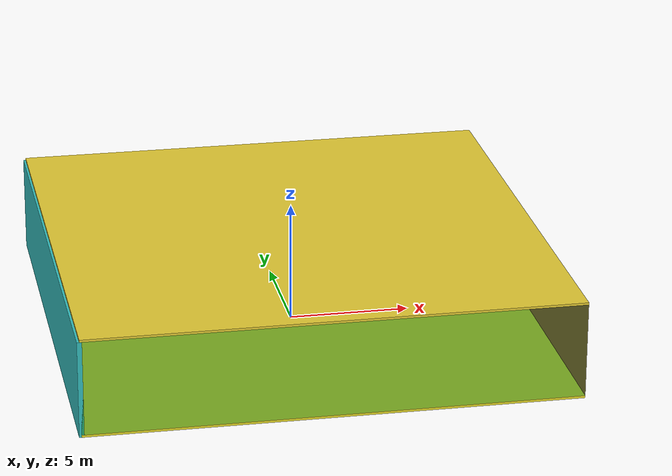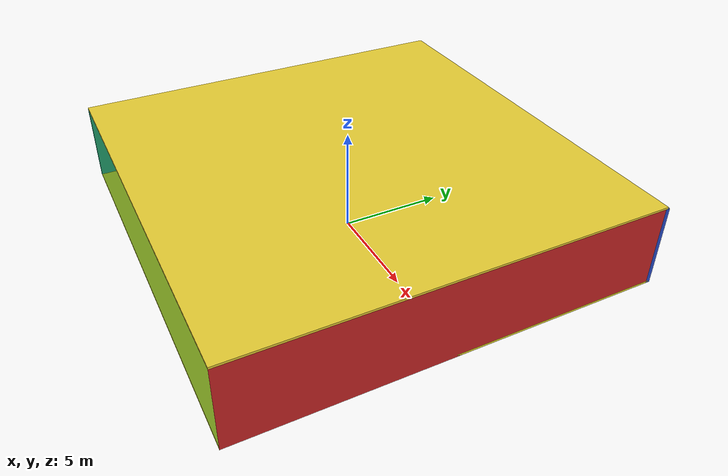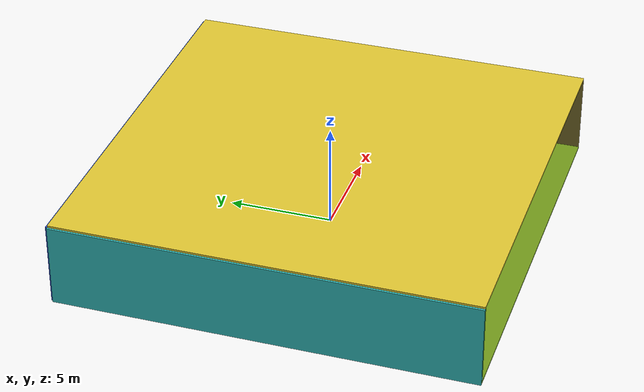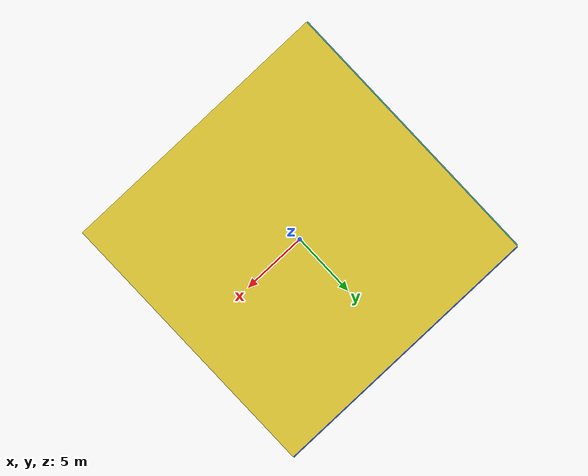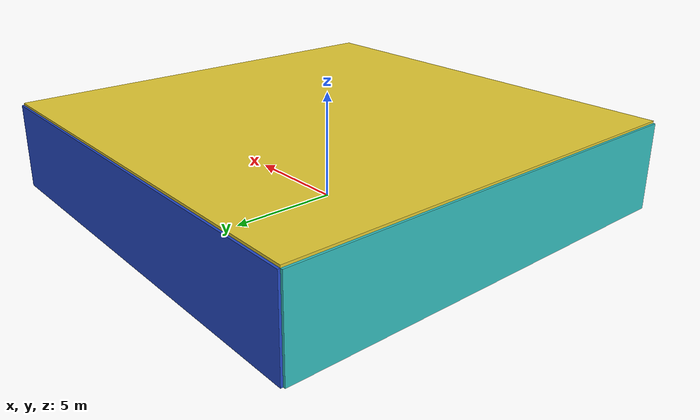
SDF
<sdf version="1.4">
 <world name="default">
  <physics type="ode">
   <max_step_size>0.001</max_step_size>
   <real_time_factor>1</real_time_factor>
   <real_time_update_rate>1000</real_time_update_rate>
   <gravity>0 0 -9.8</gravity>
  </physics>
  <scene><ambient>0.4 0.4 0.4 1</ambient><background>0.7 0.7 0.7 1</background><shadows>1</shadows></scene>
  <model name="Surrounding">
   <static>1</static>
   <link name="Ceiling">
    <collision name="Ceiling_Collision"><geometry><box><size>20 20 0.1</size></box></geometry></collision>
    <visual name="Ceiling_Visual">
     <geometry><box><size>20 20 0.1</size></box></geometry>
     <material>
      <script><uri>file://media/materials/scripts/gazebo.material</uri><name>Gazebo/ZincYellow</name></script>
     </material>
    </visual>
    <pose>0 0 4.05 0 0 0</pose>
   </link>
   <link name="Wall_South">
    <collision name="Wall_South_Collision">
     <geometry><box><size>20 0 4</size></box></geometry>
     <pose>0 0 2 0 -0 0</pose>
    </collision>
    <visual name="Wall_South_Visual">
     <pose>0 0 2 0 -0 0</pose>
     <geometry><box><size>20 0 4</size></box></geometry>
     <material>
      <script><uri>file://media/materials/scripts/gazebo.material</uri><name>Gazebo/GreenTransparent</name></script>
     </material>
    </visual>
    <velocity_decay><linear>0</linear><angular>0</angular></velocity_decay>
    <pose>0 -10 0 0 -0 0</pose>
   </link>
   <link name="Wall_East">
    <collision name="Wall_21_Collision">
     <geometry><box><size>20 0 4</size></box></geometry>
     <pose>0 0 2 0 -0 0</pose>
    </collision>
    <visual name="Wall_21_Visual">
     <pose>0 0 2 0 -0 0</pose>
     <geometry><box><size>20 0 4</size></box></geometry>
     <material>
      <script><uri>file://media/materials/scripts/gazebo.material</uri><name>Gazebo/RedBright</name></script>
     </material>
    </visual>
    <velocity_decay><linear>0</linear><angular>0</angular></velocity_decay>
    <pose>10 0 0 0 -0 1.5708</pose>
   </link>
   <link name="Wall_North">
    <collision name="Wall_22_Collision">
     <geometry><box><size>20 0.2 4</size></box></geometry>
     <pose>0 0 2 0 -0 0</pose>
    </collision>
    <visual name="Wall_22_Visual">
     <pose>0 0 2 0 -0 0</pose>
     <geometry><box><size>20 0.2 4</size></box></geometry>
     <material>
      <script><uri>file://media/materials/scripts/gazebo.material</uri><name>Gazebo/BlueGlow</name></script>
     </material>
    </visual>
    <velocity_decay><linear>0</linear><angular>0</angular></velocity_decay>
    <pose>0 10 0 0 -0 0</pose>
   </link>
   <link name="Wall_West">
    <collision name="Wall_23_Collision">
     <geometry><box><size>20 0.2 4</size></box></geometry>
     <pose>0 0 2 0 -0 0</pose>
    </collision>
    <visual name="Wall_23_Visual">
     <pose>0 0 2 0 -0 0</pose>
     <geometry><box><size>20 0.2 4</size></box></geometry>
     <material>
      <script><uri>file://media/materials/scripts/gazebo.material</uri><name>Gazebo/Turquoise</name></script>
     </material>
    </visual>
    <velocity_decay><linear>0</linear><angular>0</angular></velocity_decay>
    <pose>-10 0 0 0 0 -1.5708</pose>
   </link>
   <link name="Ground_link">
    <collision name="collision">
     <pose>0 0 .05 0 -0 0</pose>
     <geometry><box><size>20 20 0.1</size></box></geometry>
    </collision>
    <visual name="visual">
     <pose>0 0 .05 0 -0 0</pose>
     <geometry><box><size>20 20 0.1</size></box></geometry>
     <material>
      <script><uri>file://media/materials/scripts/gazebo.material</uri><name>Gazebo/Yellow</name></script>
     </material>
    </visual>
   </link>
   <static>1</static>
  </model>
  <spherical_coordinates>
   <surface_model>EARTH_WGS84</surface_model>
   <latitude_deg>0</latitude_deg>
   <longitude_deg>0</longitude_deg>
   <elevation>0</elevation>
   <heading_deg>0</heading_deg>
  </spherical_coordinates>
  <light name="lightball_0" type="diffuse">
   <diffuse>0.8 0.8 0.8 1</diffuse>
   <specular>0.2 0.2 0.2 1</specular>
   <attenuation>
    <range>100</range>
    <constant>0.7</constant>
    <linear>0.01</linear>
    <quadratic>0.001</quadratic>
   </attenuation>
   <direction>-0.5 0.1 -0.9</direction>
   <pose>2.34481835069 3.48166482522 2.41839124001 0 0 0</pose>
  </light>
  <light name="lightball_1" type="diffuse">
   <diffuse>0.8 0.8 0.8 1</diffuse>
   <specular>0.2 0.2 0.2 1</specular>
   <attenuation>
    <range>100</range>
    <constant>0.7</constant>
    <linear>0.01</linear>
    <quadratic>0.001</quadratic>
   </attenuation>
   <direction>-0.5 0.1 -0.9</direction>
   <pose>5.02532478825 -8.10325666187 0.990671725253 0 0 0</pose>
  </light>
  <light name="lightball_2" type="diffuse">
   <diffuse>0.8 0.8 0.8 1</diffuse>
   <specular>0.2 0.2 0.2 1</specular>
   <attenuation>
    <range>100</range>
    <constant>0.7</constant>
    <linear>0.01</linear>
    <quadratic>0.001</quadratic>
   </attenuation>
   <direction>-0.5 0.1 -0.9</direction>
   <pose>-2.91622866238 8.18857181345 1.68412291947 0 0 0</pose>
  </light>
  <light name="lightball_3" type="diffuse">
   <diffuse>0.8 0.8 0.8 1</diffuse>
   <specular>0.2 0.2 0.2 1</specular>
   <attenuation>
    <range>100</range>
    <constant>0.7</constant>
    <linear>0.01</linear>
    <quadratic>0.001</quadratic>
   </attenuation>
   <direction>-0.5 0.1 -0.9</direction>
   <pose>7.71988519936 -0.0624552618466 1.3732070484 0 0 0</pose>
  </light>
  <light name="lightball_4" type="diffuse">
   <diffuse>0.8 0.8 0.8 1</diffuse>
   <specular>0.2 0.2 0.2 1</specular>
   <attenuation>
    <range>100</range>
    <constant>0.7</constant>
    <linear>0.01</linear>
    <quadratic>0.001</quadratic>
   </attenuation>
   <direction>-0.5 0.1 -0.9</direction>
   <pose>-2.82169844062 -3.58410624976 2.79167587659 0 0 0</pose>
  </light>
  <light name="lightball_5" type="diffuse">
   <diffuse>0.8 0.8 0.8 1</diffuse>
   <specular>0.2 0.2 0.2 1</specular>
   <attenuation>
    <range>100</range>
    <constant>0.7</constant>
    <linear>0.01</linear>
    <quadratic>0.001</quadratic>
   </attenuation>
   <direction>-0.5 0.1 -0.9</direction>
   <pose>-0.366735940286 7.15622926714 2.08248360126 0 0 0</pose>
  </light>
  <include><uri>model://cabinet</uri><pose>-0.822444311562 4.54661484373 0 0 0 0.321957414371</pose></include>
  <include><uri>model://table</uri><pose>1.40811174783 7.72724594505 0 0 0 2.4938519361</pose></include>
  <include><uri>model://cabinet</uri><pose>3.75174811309 1.33350750248 0 0 0 2.31017593501</pose></include>
  <include><uri>model://cabinet</uri><pose>3.80196525445 5.10652336489 0 0 0 2.17897366496</pose></include>
  <include><uri>model://cabinet</uri><pose>4.0777398587 7.79803620751 0 0 0 2.33880175067</pose></include>
  <include>
   <uri>model://construction_cone</uri>
   <pose>8.17564031976 4.34778445877 0 0 0 2.10523508414</pose>
  </include>
 </world>
</sdf>

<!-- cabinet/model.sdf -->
<sdf version="1.5">
  <model name="cabinet">
    <static>true</static>
    <link name="cabinet_bottom_plate">
      <inertial>
        <pose>0 0 -1 0 0 0</pose>
        <inertia>
          <ixx>2.050000</ixx>
          <ixy>0</ixy>
          <ixz>0</ixz>
          <iyy>2.050000</iyy>
          <iyz>0</iyz>
          <izz>2.050000</izz>
        </inertia>
        <mass>25.000000</mass>
      </inertial>
      <collision name="cabinet_bottom_plate_geom">
        <pose>0 0 0.010000 0 0 0</pose>
        <geometry>
          <box>
            <size>0.450000 0.450000 0.020000</size>
          </box>
        </geometry>
      </collision>
      <visual name="cabinet_bottom_plate_geom_visual">
        <pose>0 0 0.010000 0 0 0</pose>
        <geometry>
          <box>
            <size>0.450000 0.450000 0.020000</size>
          </box>
        </geometry>
        <material>
          <script>
            <uri>model://media/materials/scripts/gazebo.material</uri>
            <name>Gazebo/Wood</name>
          </script>
        </material>
      </visual>
      <collision name="cabinet_bottom_plate_geom_cabinet_back_plate">
        <pose>0.235000 0 0.510000 0 0 0</pose>
        <geometry>
          <box>
            <size>0.020000 0.450000 1.020000</size>
          </box>
        </geometry>
      </collision>
      <visual name="cabinet_bottom_plate_geom_cabinet_back_plate_visual">
        <pose>0.235000 0 0.510000 0 0 0</pose>
        <geometry>
          <box>
            <size>0.020000 0.450000 1.020000</size>
          </box>
        </geometry>
        <material>
          <script>
            <uri>model://media/materials/scripts/gazebo.material</uri>
            <name>Gazebo/Wood</name>
          </script>
        </material>
      </visual>
      <collision name="cabinet_bottom_plate_geom_cabinet_left_plate">
        <pose>0 0.235000 0.510000 0 0 0</pose>
        <geometry>
          <box>
            <size>0.450000 0.020000 1.020000</size>
          </box>
        </geometry>
      </collision>
      <visual name="cabinet_bottom_plate_geom_cabinet_left_plate_visual">
        <pose>0 0.235000 0.510000 0 0 0</pose>
        <geometry>
          <box>
            <size>0.450000 0.020000 1.020000</size>
          </box>
        </geometry>
        <material>
          <script>
            <uri>model://media/materials/scripts/gazebo.material</uri>
            <name>Gazebo/Wood</name>
          </script>
        </material>
      </visual>
      <collision name="cabinet_bottom_plate_geom_cabinet_middle_plate">
        <pose>0 0 0.510000 0 0 0</pose>
        <geometry>
          <box>
            <size>0.450000 0.450000 0.020000</size>
          </box>
        </geometry>
      </collision>
      <visual name="cabinet_bottom_plate_geom_cabinet_middle_plate_visual">
        <pose>0 0 0.510000 0 0 0</pose>
        <geometry>
          <box>
            <size>0.450000 0.450000 0.020000</size>
          </box>
        </geometry>
        <material>
          <script>
            <uri>model://media/materials/scripts/gazebo.material</uri>
            <name>Gazebo/Wood</name>
          </script>
        </material>
      </visual>
      <collision name="cabinet_bottom_plate_geom_cabinet_right_plate">
        <pose>0 -0.235000 0.510000 0 0 0</pose>
        <geometry>
          <box>
            <size>0.450000 0.020000 1.020000</size>
          </box>
        </geometry>
      </collision>
      <visual name="cabinet_bottom_plate_geom_cabinet_right_plate_visual">
        <pose>0 -0.235000 0.510000 0 0 0</pose>
        <geometry>
          <box>
            <size>0.450000 0.020000 1.020000</size>
          </box>
        </geometry>
        <material>
          <script>
            <uri>model://media/materials/scripts/gazebo.material</uri>
            <name>Gazebo/Wood</name>
          </script>
        </material>
      </visual>
      <collision name="cabinet_bottom_plate_geom_cabinet_top_plate">
        <pose>0 0 1.010000 0 0 0</pose>
        <geometry>
          <box>
            <size>0.450000 0.450000 0.020000</size>
          </box>
        </geometry>
      </collision>
      <visual name="cabinet_bottom_plate_geom_cabinet_top_plate_visual">
        <pose>0 0 1.010000 0 0 0</pose>
        <geometry>
          <box>
            <size>0.450000 0.450000 0.020000</size>
          </box>
        </geometry>
        <material>
          <script>
            <uri>model://media/materials/scripts/gazebo.material</uri>
            <name>Gazebo/Wood</name>
          </script>
        </material>
      </visual>
    </link>
  </model>
</sdf>

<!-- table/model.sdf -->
<sdf version="1.5">
  <model name="table">
    <static>true</static>
    <link name="link">
      <collision name="surface">
        <pose>0 0 1.0 0 0 0</pose>
        <geometry>
          <box>
            <size>1.5 0.8 0.03</size>
          </box>
        </geometry>
        <surface>
          <friction>
            <ode>
              <mu>0.6</mu>
              <mu2>0.6</mu2>
            </ode>
          </friction>
        </surface>
      </collision>
      <visual name="visual1">
        <pose>0 0 1.0 0 0 0</pose>
        <geometry>
          <box>
            <size>1.5 0.8 0.03</size>
          </box>
        </geometry>
        <material>
          <script>
            <uri>model://media/materials/scripts/gazebo.material</uri>
            <name>Gazebo/Wood</name>
          </script>
        </material>
      </visual>
      <collision name="front_left_leg">
        <pose>0.68 0.38 0.5 0 0 0</pose>
        <geometry>
          <cylinder>
            <radius>0.02</radius>
            <length>1.0</length>
          </cylinder>
        </geometry>
      </collision>
      <visual name="front_left_leg">
        <pose>0.68 0.38 0.5 0 0 0</pose>
        <geometry>
          <cylinder>
            <radius>0.02</radius>
            <length>1.0</length>
          </cylinder>
        </geometry>
        <material>
          <script>
            <uri>model://media/materials/scripts/gazebo.material</uri>
            <name>Gazebo/Grey</name>
          </script>
        </material>
      </visual>
      <collision name="front_right_leg">
        <pose>0.68 -0.38 0.5 0 0 0</pose>
        <geometry>
          <cylinder>
            <radius>0.02</radius>
            <length>1.0</length>
          </cylinder>
        </geometry>
      </collision>
      <visual name="front_right_leg">
        <pose>0.68 -0.38 0.5 0 0 0</pose>
        <geometry>
          <cylinder>
            <radius>0.02</radius>
            <length>1.0</length>
          </cylinder>
        </geometry>
        <material>
          <script>
            <uri>model://media/materials/scripts/gazebo.material</uri>
            <name>Gazebo/Grey</name>
          </script>
        </material>
      </visual>
      <collision name="back_right_leg">
        <pose>-0.68 -0.38 0.5 0 0 0</pose>
        <geometry>
          <cylinder>
            <radius>0.02</radius>
            <length>1.0</length>
          </cylinder>
        </geometry>
      </collision>
      <visual name="back_right_leg">
        <pose>-0.68 -0.38 0.5 0 0 0</pose>
        <geometry>
          <cylinder>
            <radius>0.02</radius>
            <length>1.0</length>
          </cylinder>
        </geometry>
        <material>
          <script>
            <uri>model://media/materials/scripts/gazebo.material</uri>
            <name>Gazebo/Grey</name>
          </script>
        </material>
      </visual>
      <collision name="back_left_leg">
        <pose>-0.68 0.38 0.5 0 0 0</pose>
        <geometry>
          <cylinder>
            <radius>0.02</radius>
            <length>1.0</length>
          </cylinder>
        </geometry>
      </collision>
      <visual name="back_left_leg">
        <pose>-0.68 0.38 0.5 0 0 0</pose>
        <geometry>
          <cylinder>
            <radius>0.02</radius>
            <length>1.0</length>
          </cylinder>
        </geometry>
        <material>
          <script>
            <uri>model://media/materials/scripts/gazebo.material</uri>
            <name>Gazebo/Grey</name>
          </script>
        </material>
      </visual>
    </link>
  </model>
</sdf>

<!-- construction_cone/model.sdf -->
<sdf version="1.5">
  <model name="Construction Cone">
    <link name="link">
      <collision name="collision">
        <geometry>
          <mesh>
            <scale>10 10 10</scale>
            <uri>file://isr-testbed/construction_cone/meshes/construction_cone.dae</uri>
          </mesh>
        </geometry>
      </collision>
      <visual name="visual">
        <geometry>
          <mesh>
            <scale>10 10 10</scale>
            <uri>file://isr-testbed/construction_cone/meshes/construction_cone.dae</uri>
          </mesh>
        </geometry>
      </visual>
    </link>
  </model>
</sdf>
